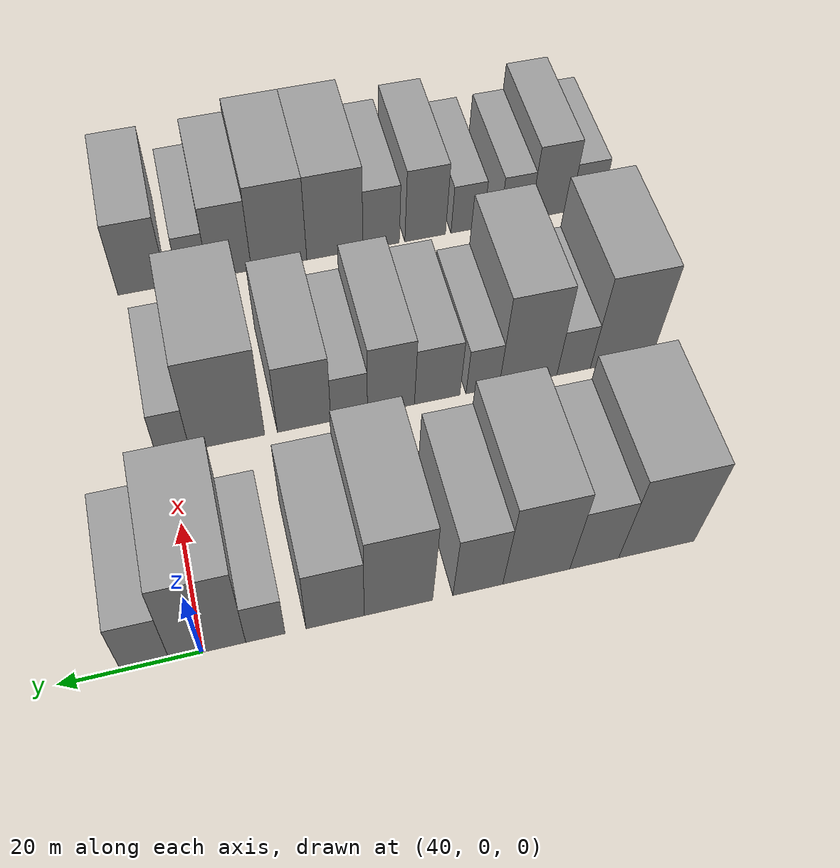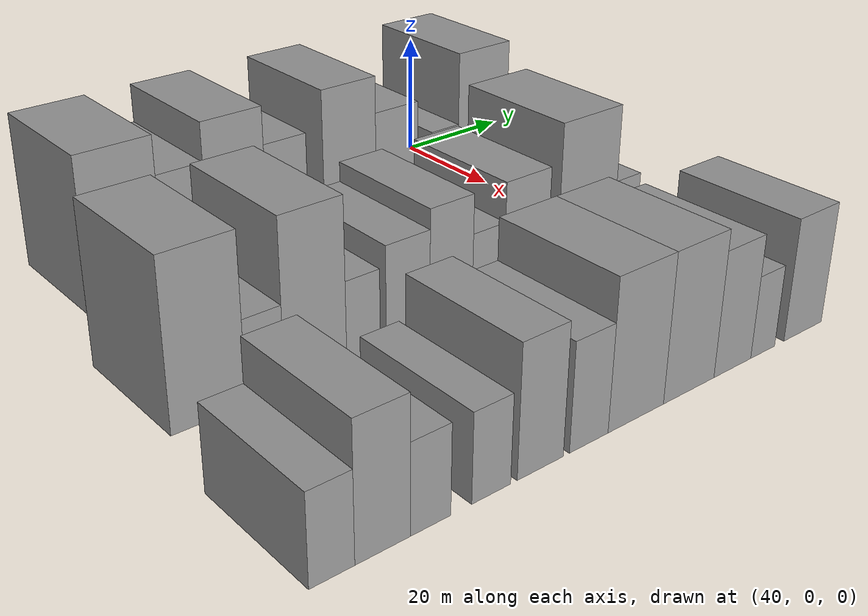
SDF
<sdf version="1.6">
 <world name="default">
  <model name="building_31">
   <static>1</static>
   <pose>50.0000 -67.0458 0 0.000000 0.000000 0.000000</pose>
   <link name="link">
    <pose>0 0 12.00 0 0 0</pose>
    <collision name="collision"><geometry><box><size>20.0000 11.7074 24.0000</size></box></geometry></collision>
    <visual name="visual">
     <cast_shadows>0</cast_shadows>
     <geometry><box><size>20.0000 11.7074 24.0000</size></box></geometry>
     <material>
      <script>
       <uri>model://grey_wall/materials/scripts</uri>
       <uri>model://grey_wall/materials/textures</uri>
       <name>vrc/grey_wall</name>
      </script>
     </material>
    </visual>
   </link>
  </model>
  <model name="building_32">
   <static>1</static>
   <pose>50.0000 -57.4610 0 0.000000 0.000000 0.000000</pose>
   <link name="link">
    <pose>0 0 9.00 0 0 0</pose>
    <collision name="collision"><geometry><box><size>20.0000 7.4623 18.0000</size></box></geometry></collision>
    <visual name="visual">
     <cast_shadows>0</cast_shadows>
     <geometry><box><size>20.0000 7.4623 18.0000</size></box></geometry>
     <material>
      <script>
       <uri>model://grey_wall/materials/scripts</uri>
       <uri>model://grey_wall/materials/textures</uri>
       <name>vrc/grey_wall</name>
      </script>
     </material>
    </visual>
   </link>
  </model>
  <model name="building_33">
   <static>1</static>
   <pose>50.0000 -48.6677 0 0.000000 0.000000 0.000000</pose>
   <link name="link">
    <pose>0 0 12.00 0 0 0</pose>
    <collision name="collision"><geometry><box><size>20.0000 10.1242 24.0000</size></box></geometry></collision>
    <visual name="visual">
     <cast_shadows>0</cast_shadows>
     <geometry><box><size>20.0000 10.1242 24.0000</size></box></geometry>
     <material>
      <script>
       <uri>model://grey_wall/materials/scripts</uri>
       <uri>model://grey_wall/materials/textures</uri>
       <name>vrc/grey_wall</name>
      </script>
     </material>
    </visual>
   </link>
  </model>
  <model name="building_34">
   <static>1</static>
   <pose>50.0000 -39.8887 0 0.000000 0.000000 0.000000</pose>
   <link name="link">
    <pose>0 0 9.00 0 0 0</pose>
    <collision name="collision"><geometry><box><size>20.0000 7.4339 18.0000</size></box></geometry></collision>
    <visual name="visual">
     <cast_shadows>0</cast_shadows>
     <geometry><box><size>20.0000 7.4339 18.0000</size></box></geometry>
     <material>
      <script>
       <uri>model://grey_wall/materials/scripts</uri>
       <uri>model://grey_wall/materials/textures</uri>
       <name>vrc/grey_wall</name>
      </script>
     </material>
    </visual>
   </link>
  </model>
  <model name="building_35">
   <static>1</static>
   <pose>50.0000 -28.1700 0 0.000000 0.000000 0.000000</pose>
   <link name="link">
    <pose>0 0 12.00 0 0 0</pose>
    <collision name="collision"><geometry><box><size>20.0000 10.0035 24.0000</size></box></geometry></collision>
    <visual name="visual">
     <cast_shadows>0</cast_shadows>
     <geometry><box><size>20.0000 10.0035 24.0000</size></box></geometry>
     <material>
      <script>
       <uri>model://grey_wall/materials/scripts</uri>
       <uri>model://grey_wall/materials/textures</uri>
       <name>vrc/grey_wall</name>
      </script>
     </material>
    </visual>
   </link>
  </model>
  <model name="building_36">
   <static>1</static>
   <pose>50.0000 -18.9772 0 0.000000 0.000000 0.000000</pose>
   <link name="link">
    <pose>0 0 9.00 0 0 0</pose>
    <collision name="collision"><geometry><box><size>20.0000 8.3821 18.0000</size></box></geometry></collision>
    <visual name="visual">
     <cast_shadows>0</cast_shadows>
     <geometry><box><size>20.0000 8.3821 18.0000</size></box></geometry>
     <material>
      <script>
       <uri>model://grey_wall/materials/scripts</uri>
       <uri>model://grey_wall/materials/textures</uri>
       <name>vrc/grey_wall</name>
      </script>
     </material>
    </visual>
   </link>
  </model>
  <model name="building_37">
   <static>1</static>
   <pose>50.0000 -8.9905 0 0.000000 0.000000 0.000000</pose>
   <link name="link">
    <pose>0 0 6.00 0 0 0</pose>
    <collision name="collision"><geometry><box><size>20.0000 5.5913 12.0000</size></box></geometry></collision>
    <visual name="visual">
     <cast_shadows>0</cast_shadows>
     <geometry><box><size>20.0000 5.5913 12.0000</size></box></geometry>
     <material>
      <script>
       <uri>model://grey_wall/materials/scripts</uri>
       <uri>model://grey_wall/materials/textures</uri>
       <name>vrc/grey_wall</name>
      </script>
     </material>
    </visual>
   </link>
  </model>
  <model name="building_38">
   <static>1</static>
   <pose>50.0000 -0.8395 0 0.000000 0.000000 0.000000</pose>
   <link name="link">
    <pose>0 0 12.00 0 0 0</pose>
    <collision name="collision"><geometry><box><size>20.0000 10.7109 24.0000</size></box></geometry></collision>
    <visual name="visual">
     <cast_shadows>0</cast_shadows>
     <geometry><box><size>20.0000 10.7109 24.0000</size></box></geometry>
     <material>
      <script>
       <uri>model://grey_wall/materials/scripts</uri>
       <uri>model://grey_wall/materials/textures</uri>
       <name>vrc/grey_wall</name>
      </script>
     </material>
    </visual>
   </link>
  </model>
  <model name="building_39">
   <static>1</static>
   <pose>50.0000 7.8740 0 0.000000 0.000000 0.000000</pose>
   <link name="link">
    <pose>0 0 7.50 0 0 0</pose>
    <collision name="collision"><geometry><box><size>20.0000 6.7161 15.0000</size></box></geometry></collision>
    <visual name="visual">
     <cast_shadows>0</cast_shadows>
     <geometry><box><size>20.0000 6.7161 15.0000</size></box></geometry>
     <material>
      <script>
       <uri>model://grey_wall/materials/scripts</uri>
       <uri>model://grey_wall/materials/textures</uri>
       <name>vrc/grey_wall</name>
      </script>
     </material>
    </visual>
   </link>
  </model>
  <model name="building_107">
   <static>1</static>
   <pose>82.0000 -73.1992 0 0.000000 0.000000 0.000000</pose>
   <link name="link">
    <pose>0 0 12.00 0 0 0</pose>
    <collision name="collision"><geometry><box><size>20.0000 10.5549 24.0000</size></box></geometry></collision>
    <visual name="visual">
     <cast_shadows>0</cast_shadows>
     <geometry><box><size>20.0000 10.5549 24.0000</size></box></geometry>
     <material>
      <script>
       <uri>model://grey_wall/materials/scripts</uri>
       <uri>model://grey_wall/materials/textures</uri>
       <name>vrc/grey_wall</name>
      </script>
     </material>
    </visual>
   </link>
  </model>
  <model name="building_108">
   <static>1</static>
   <pose>82.0000 -65.0981 0 0.000000 0.000000 0.000000</pose>
   <link name="link">
    <pose>0 0 6.00 0 0 0</pose>
    <collision name="collision"><geometry><box><size>20.0000 5.6474 12.0000</size></box></geometry></collision>
    <visual name="visual">
     <cast_shadows>0</cast_shadows>
     <geometry><box><size>20.0000 5.6474 12.0000</size></box></geometry>
     <material>
      <script>
       <uri>model://grey_wall/materials/scripts</uri>
       <uri>model://grey_wall/materials/textures</uri>
       <name>vrc/grey_wall</name>
      </script>
     </material>
    </visual>
   </link>
  </model>
  <model name="building_109">
   <static>1</static>
   <pose>82.0000 -57.4514 0 0.000000 0.000000 0.000000</pose>
   <link name="link">
    <pose>0 0 12.00 0 0 0</pose>
    <collision name="collision"><geometry><box><size>20.0000 9.6460 24.0000</size></box></geometry></collision>
    <visual name="visual">
     <cast_shadows>0</cast_shadows>
     <geometry><box><size>20.0000 9.6460 24.0000</size></box></geometry>
     <material>
      <script>
       <uri>model://grey_wall/materials/scripts</uri>
       <uri>model://grey_wall/materials/textures</uri>
       <name>vrc/grey_wall</name>
      </script>
     </material>
    </visual>
   </link>
  </model>
  <model name="building_110">
   <static>1</static>
   <pose>82.0000 -49.8948 0 0.000000 0.000000 0.000000</pose>
   <link name="link">
    <pose>0 0 6.00 0 0 0</pose>
    <collision name="collision"><geometry><box><size>20.0000 5.4674 12.0000</size></box></geometry></collision>
    <visual name="visual">
     <cast_shadows>0</cast_shadows>
     <geometry><box><size>20.0000 5.4674 12.0000</size></box></geometry>
     <material>
      <script>
       <uri>model://grey_wall/materials/scripts</uri>
       <uri>model://grey_wall/materials/textures</uri>
       <name>vrc/grey_wall</name>
      </script>
     </material>
    </visual>
   </link>
  </model>
  <model name="building_111">
   <static>1</static>
   <pose>82.0000 -42.4465 0 0.000000 0.000000 0.000000</pose>
   <link name="link">
    <pose>0 0 7.50 0 0 0</pose>
    <collision name="collision"><geometry><box><size>20.0000 7.4293 15.0000</size></box></geometry></collision>
    <visual name="visual">
     <cast_shadows>0</cast_shadows>
     <geometry><box><size>20.0000 7.4293 15.0000</size></box></geometry>
     <material>
      <script>
       <uri>model://grey_wall/materials/scripts</uri>
       <uri>model://grey_wall/materials/textures</uri>
       <name>vrc/grey_wall</name>
      </script>
     </material>
    </visual>
   </link>
  </model>
  <model name="building_112">
   <static>1</static>
   <pose>82.0000 -34.9271 0 0.000000 0.000000 0.000000</pose>
   <link name="link">
    <pose>0 0 9.00 0 0 0</pose>
    <collision name="collision"><geometry><box><size>20.0000 7.6094 18.0000</size></box></geometry></collision>
    <visual name="visual">
     <cast_shadows>0</cast_shadows>
     <geometry><box><size>20.0000 7.6094 18.0000</size></box></geometry>
     <material>
      <script>
       <uri>model://grey_wall/materials/scripts</uri>
       <uri>model://grey_wall/materials/textures</uri>
       <name>vrc/grey_wall</name>
      </script>
     </material>
    </visual>
   </link>
  </model>
  <model name="building_113">
   <static>1</static>
   <pose>82.0000 -28.1898 0 0.000000 0.000000 0.000000</pose>
   <link name="link">
    <pose>0 0 6.00 0 0 0</pose>
    <collision name="collision"><geometry><box><size>20.0000 5.8652 12.0000</size></box></geometry></collision>
    <visual name="visual">
     <cast_shadows>0</cast_shadows>
     <geometry><box><size>20.0000 5.8652 12.0000</size></box></geometry>
     <material>
      <script>
       <uri>model://grey_wall/materials/scripts</uri>
       <uri>model://grey_wall/materials/textures</uri>
       <name>vrc/grey_wall</name>
      </script>
     </material>
    </visual>
   </link>
  </model>
  <model name="building_114">
   <static>1</static>
   <pose>82.0000 -21.0156 0 0.000000 0.000000 0.000000</pose>
   <link name="link">
    <pose>0 0 9.00 0 0 0</pose>
    <collision name="collision"><geometry><box><size>20.0000 8.4830 18.0000</size></box></geometry></collision>
    <visual name="visual">
     <cast_shadows>0</cast_shadows>
     <geometry><box><size>20.0000 8.4830 18.0000</size></box></geometry>
     <material>
      <script>
       <uri>model://grey_wall/materials/scripts</uri>
       <uri>model://grey_wall/materials/textures</uri>
       <name>vrc/grey_wall</name>
      </script>
     </material>
    </visual>
   </link>
  </model>
  <model name="building_115">
   <static>1</static>
   <pose>82.0000 -8.9152 0 0.000000 0.000000 0.000000</pose>
   <link name="link">
    <pose>0 0 12.00 0 0 0</pose>
    <collision name="collision"><geometry><box><size>20.0000 11.7179 24.0000</size></box></geometry></collision>
    <visual name="visual">
     <cast_shadows>0</cast_shadows>
     <geometry><box><size>20.0000 11.7179 24.0000</size></box></geometry>
     <material>
      <script>
       <uri>model://grey_wall/materials/scripts</uri>
       <uri>model://grey_wall/materials/textures</uri>
       <name>vrc/grey_wall</name>
      </script>
     </material>
    </visual>
   </link>
  </model>
  <model name="building_116">
   <static>1</static>
   <pose>82.0000 -0.5017 0 0.000000 0.000000 0.000000</pose>
   <link name="link">
    <pose>0 0 6.00 0 0 0</pose>
    <collision name="collision"><geometry><box><size>20.0000 5.1089 12.0000</size></box></geometry></collision>
    <visual name="visual">
     <cast_shadows>0</cast_shadows>
     <geometry><box><size>20.0000 5.1089 12.0000</size></box></geometry>
     <material>
      <script>
       <uri>model://grey_wall/materials/scripts</uri>
       <uri>model://grey_wall/materials/textures</uri>
       <name>vrc/grey_wall</name>
      </script>
     </material>
    </visual>
   </link>
  </model>
  <model name="building_187">
   <static>1</static>
   <pose>114.0000 -78.1139 0 0.000000 0.000000 0.000000</pose>
   <link name="link">
    <pose>0 0 6.00 0 0 0</pose>
    <collision name="collision"><geometry><box><size>20.0000 5.7725 12.0000</size></box></geometry></collision>
    <visual name="visual">
     <cast_shadows>0</cast_shadows>
     <geometry><box><size>20.0000 5.7725 12.0000</size></box></geometry>
     <material>
      <script>
       <uri>model://grey_wall/materials/scripts</uri>
       <uri>model://grey_wall/materials/textures</uri>
       <name>vrc/grey_wall</name>
      </script>
     </material>
    </visual>
   </link>
  </model>
  <model name="building_188">
   <static>1</static>
   <pose>114.0000 -71.5613 0 0.000000 0.000000 0.000000</pose>
   <link name="link">
    <pose>0 0 9.00 0 0 0</pose>
    <collision name="collision"><geometry><box><size>20.0000 7.3327 18.0000</size></box></geometry></collision>
    <visual name="visual">
     <cast_shadows>0</cast_shadows>
     <geometry><box><size>20.0000 7.3327 18.0000</size></box></geometry>
     <material>
      <script>
       <uri>model://grey_wall/materials/scripts</uri>
       <uri>model://grey_wall/materials/textures</uri>
       <name>vrc/grey_wall</name>
      </script>
     </material>
    </visual>
   </link>
  </model>
  <model name="building_189">
   <static>1</static>
   <pose>114.0000 -65.0999 0 0.000000 0.000000 0.000000</pose>
   <link name="link">
    <pose>0 0 6.00 0 0 0</pose>
    <collision name="collision"><geometry><box><size>20.0000 5.5902 12.0000</size></box></geometry></collision>
    <visual name="visual">
     <cast_shadows>0</cast_shadows>
     <geometry><box><size>20.0000 5.5902 12.0000</size></box></geometry>
     <material>
      <script>
       <uri>model://grey_wall/materials/scripts</uri>
       <uri>model://grey_wall/materials/textures</uri>
       <name>vrc/grey_wall</name>
      </script>
     </material>
    </visual>
   </link>
  </model>
  <model name="building_190">
   <static>1</static>
   <pose>114.0000 -56.4087 0 0.000000 0.000000 0.000000</pose>
   <link name="link">
    <pose>0 0 6.00 0 0 0</pose>
    <collision name="collision"><geometry><box><size>20.0000 5.7922 12.0000</size></box></geometry></collision>
    <visual name="visual">
     <cast_shadows>0</cast_shadows>
     <geometry><box><size>20.0000 5.7922 12.0000</size></box></geometry>
     <material>
      <script>
       <uri>model://grey_wall/materials/scripts</uri>
       <uri>model://grey_wall/materials/textures</uri>
       <name>vrc/grey_wall</name>
      </script>
     </material>
    </visual>
   </link>
  </model>
  <model name="building_191">
   <static>1</static>
   <pose>114.0000 -48.8810 0 0.000000 0.000000 0.000000</pose>
   <link name="link">
    <pose>0 0 9.00 0 0 0</pose>
    <collision name="collision"><geometry><box><size>20.0000 7.2632 18.0000</size></box></geometry></collision>
    <visual name="visual">
     <cast_shadows>0</cast_shadows>
     <geometry><box><size>20.0000 7.2632 18.0000</size></box></geometry>
     <material>
      <script>
       <uri>model://grey_wall/materials/scripts</uri>
       <uri>model://grey_wall/materials/textures</uri>
       <name>vrc/grey_wall</name>
      </script>
     </material>
    </visual>
   </link>
  </model>
  <model name="building_192">
   <static>1</static>
   <pose>114.0000 -41.0202 0 0.000000 0.000000 0.000000</pose>
   <link name="link">
    <pose>0 0 7.50 0 0 0</pose>
    <collision name="collision"><geometry><box><size>20.0000 6.4583 15.0000</size></box></geometry></collision>
    <visual name="visual">
     <cast_shadows>0</cast_shadows>
     <geometry><box><size>20.0000 6.4583 15.0000</size></box></geometry>
     <material>
      <script>
       <uri>model://grey_wall/materials/scripts</uri>
       <uri>model://grey_wall/materials/textures</uri>
       <name>vrc/grey_wall</name>
      </script>
     </material>
    </visual>
   </link>
  </model>
  <model name="building_193">
   <static>1</static>
   <pose>114.0000 -32.8806 0 0.000000 0.000000 0.000000</pose>
   <link name="link">
    <pose>0 0 10.50 0 0 0</pose>
    <collision name="collision"><geometry><box><size>20.0000 9.8209 21.0000</size></box></geometry></collision>
    <visual name="visual">
     <cast_shadows>0</cast_shadows>
     <geometry><box><size>20.0000 9.8209 21.0000</size></box></geometry>
     <material>
      <script>
       <uri>model://grey_wall/materials/scripts</uri>
       <uri>model://grey_wall/materials/textures</uri>
       <name>vrc/grey_wall</name>
      </script>
     </material>
    </visual>
   </link>
  </model>
  <model name="building_194">
   <static>1</static>
   <pose>114.0000 -23.1765 0 0.000000 0.000000 0.000000</pose>
   <link name="link">
    <pose>0 0 10.50 0 0 0</pose>
    <collision name="collision"><geometry><box><size>20.0000 9.5874 21.0000</size></box></geometry></collision>
    <visual name="visual">
     <cast_shadows>0</cast_shadows>
     <geometry><box><size>20.0000 9.5874 21.0000</size></box></geometry>
     <material>
      <script>
       <uri>model://grey_wall/materials/scripts</uri>
       <uri>model://grey_wall/materials/textures</uri>
       <name>vrc/grey_wall</name>
      </script>
     </material>
    </visual>
   </link>
  </model>
  <model name="building_195">
   <static>1</static>
   <pose>114.0000 -14.6818 0 0.000000 0.000000 0.000000</pose>
   <link name="link">
    <pose>0 0 9.00 0 0 0</pose>
    <collision name="collision"><geometry><box><size>20.0000 7.4019 18.0000</size></box></geometry></collision>
    <visual name="visual">
     <cast_shadows>0</cast_shadows>
     <geometry><box><size>20.0000 7.4019 18.0000</size></box></geometry>
     <material>
      <script>
       <uri>model://grey_wall/materials/scripts</uri>
       <uri>model://grey_wall/materials/textures</uri>
       <name>vrc/grey_wall</name>
      </script>
     </material>
    </visual>
   </link>
  </model>
  <model name="building_196">
   <static>1</static>
   <pose>114.0000 -8.4713 0 0.000000 0.000000 0.000000</pose>
   <link name="link">
    <pose>0 0 6.00 0 0 0</pose>
    <collision name="collision"><geometry><box><size>20.0000 5.0190 12.0000</size></box></geometry></collision>
    <visual name="visual">
     <cast_shadows>0</cast_shadows>
     <geometry><box><size>20.0000 5.0190 12.0000</size></box></geometry>
     <material>
      <script>
       <uri>model://grey_wall/materials/scripts</uri>
       <uri>model://grey_wall/materials/textures</uri>
       <name>vrc/grey_wall</name>
      </script>
     </material>
    </visual>
   </link>
  </model>
  <model name="building_197">
   <static>1</static>
   <pose>114.0000 0.1668 0 0.000000 0.000000 0.000000</pose>
   <link name="link">
    <pose>0 0 9.00 0 0 0</pose>
    <collision name="collision"><geometry><box><size>20.0000 8.2572 18.0000</size></box></geometry></collision>
    <visual name="visual">
     <cast_shadows>0</cast_shadows>
     <geometry><box><size>20.0000 8.2572 18.0000</size></box></geometry>
     <material>
      <script>
       <uri>model://grey_wall/materials/scripts</uri>
       <uri>model://grey_wall/materials/textures</uri>
       <name>vrc/grey_wall</name>
      </script>
     </material>
    </visual>
   </link>
  </model>
 </world>
</sdf>
